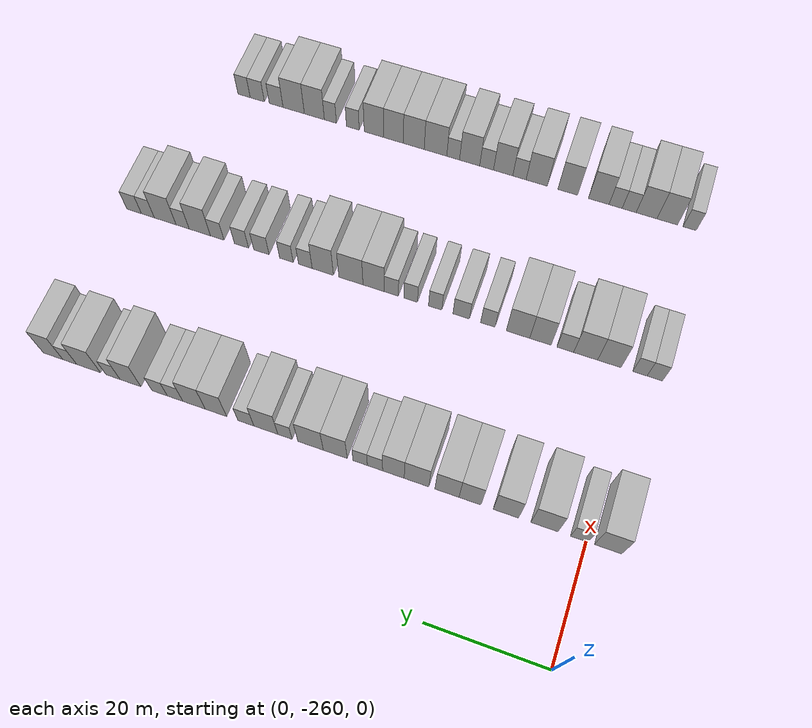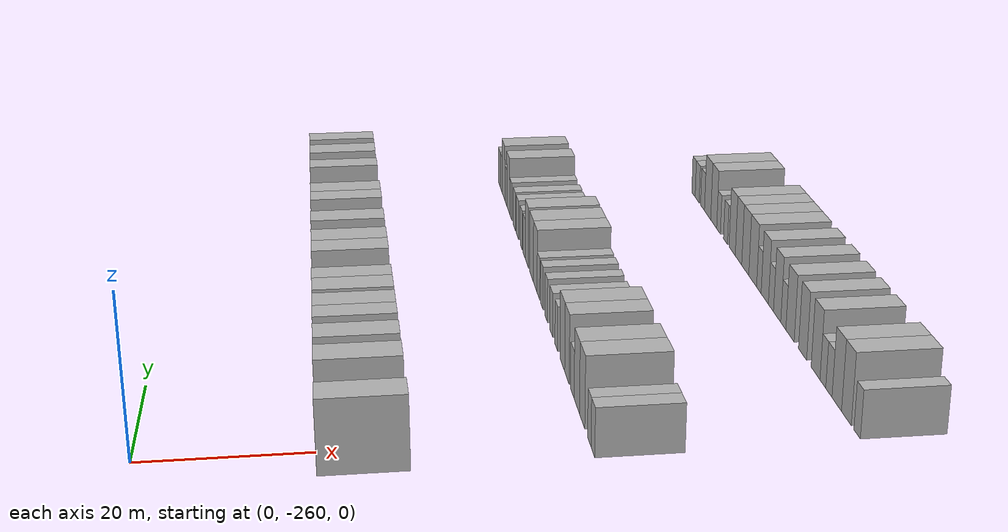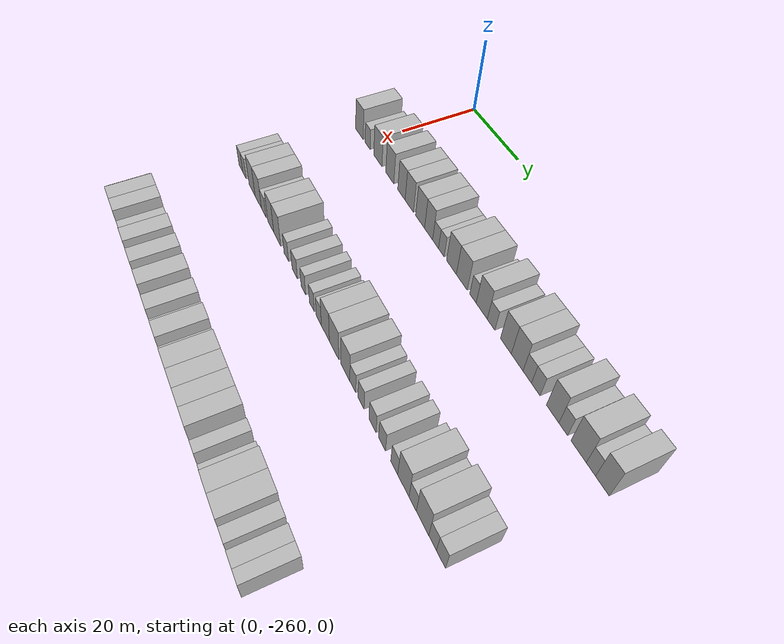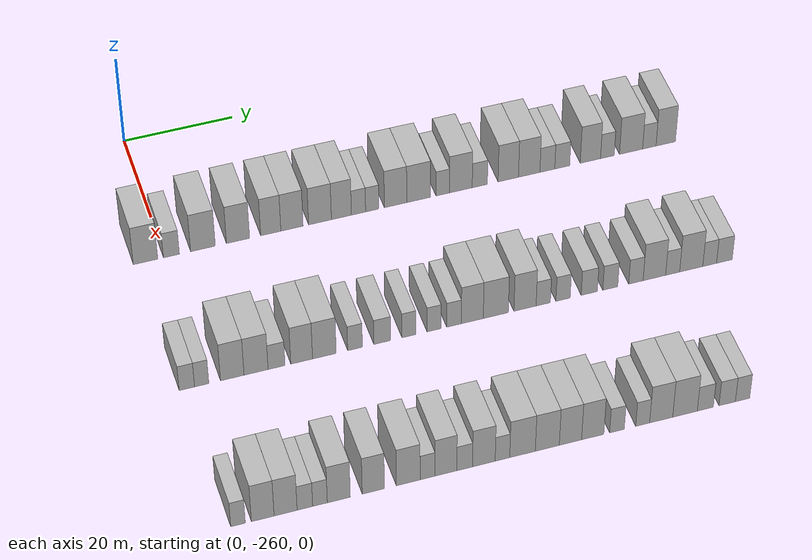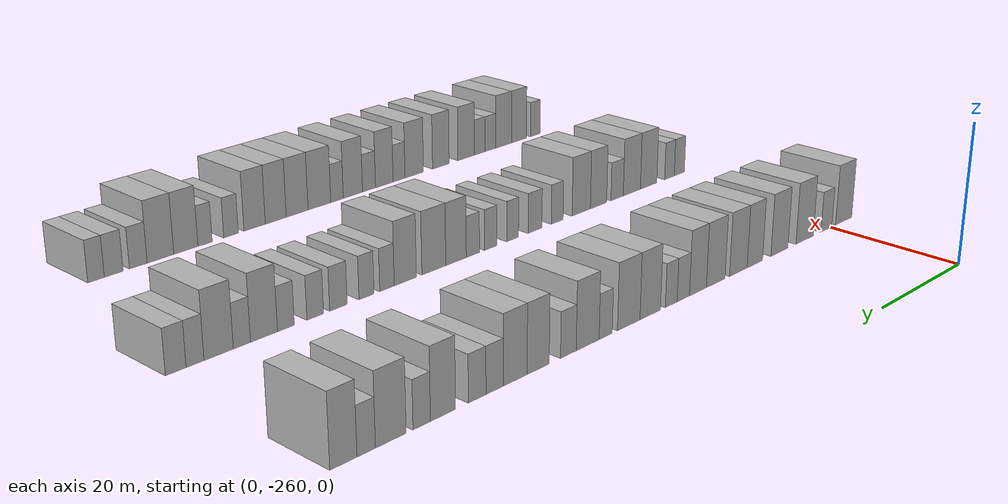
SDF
<sdf version="1.6">
 <world name="default">
  <model name="building_48">
   <static>1</static>
   <pose>25.0000 -263.4462 0 0.000000 0.000000 0.000000</pose>
   <link name="link">
    <pose>0 0 4.50 0 0 0</pose>
    <collision name="collision"><geometry><box><size>10.0000 4.3500 9.0000</size></box></geometry></collision>
    <visual name="visual">
     <cast_shadows>0</cast_shadows>
     <geometry><box><size>10.0000 4.3500 9.0000</size></box></geometry>
     <material>
      <script>
       <uri>model://HANNAS_wall/materials/scripts</uri>
       <uri>model://HANNAS_wall/materials/textures</uri>
       <name>vrc/HANNAS_wall</name>
      </script>
     </material>
    </visual>
   </link>
  </model>
  <model name="building_49">
   <static>1</static>
   <pose>25.0000 -258.8504 0 0.000000 0.000000 0.000000</pose>
   <link name="link">
    <pose>0 0 3.00 0 0 0</pose>
    <collision name="collision"><geometry><box><size>10.0000 2.8417 6.0000</size></box></geometry></collision>
    <visual name="visual">
     <cast_shadows>0</cast_shadows>
     <geometry><box><size>10.0000 2.8417 6.0000</size></box></geometry>
     <material>
      <script>
       <uri>model://HANNAS_wall/materials/scripts</uri>
       <uri>model://HANNAS_wall/materials/textures</uri>
       <name>vrc/HANNAS_wall</name>
      </script>
     </material>
    </visual>
   </link>
  </model>
  <model name="building_50">
   <static>1</static>
   <pose>25.0000 -253.2241 0 0.000000 0.000000 0.000000</pose>
   <link name="link">
    <pose>0 0 4.50 0 0 0</pose>
    <collision name="collision"><geometry><box><size>10.0000 4.4109 9.0000</size></box></geometry></collision>
    <visual name="visual">
     <cast_shadows>0</cast_shadows>
     <geometry><box><size>10.0000 4.4109 9.0000</size></box></geometry>
     <material>
      <script>
       <uri>model://HANNAS_wall/materials/scripts</uri>
       <uri>model://HANNAS_wall/materials/textures</uri>
       <name>vrc/HANNAS_wall</name>
      </script>
     </material>
    </visual>
   </link>
  </model>
  <model name="building_51">
   <static>1</static>
   <pose>25.0000 -246.9403 0 0.000000 0.000000 0.000000</pose>
   <link name="link">
    <pose>0 0 4.50 0 0 0</pose>
    <collision name="collision"><geometry><box><size>10.0000 4.1566 9.0000</size></box></geometry></collision>
    <visual name="visual">
     <cast_shadows>0</cast_shadows>
     <geometry><box><size>10.0000 4.1566 9.0000</size></box></geometry>
     <material>
      <script>
       <uri>model://HANNAS_wall/materials/scripts</uri>
       <uri>model://HANNAS_wall/materials/textures</uri>
       <name>vrc/HANNAS_wall</name>
      </script>
     </material>
    </visual>
   </link>
  </model>
  <model name="building_52">
   <static>1</static>
   <pose>25.0000 -241.0428 0 0.000000 0.000000 0.000000</pose>
   <link name="link">
    <pose>0 0 4.50 0 0 0</pose>
    <collision name="collision"><geometry><box><size>10.0000 3.6384 9.0000</size></box></geometry></collision>
    <visual name="visual">
     <cast_shadows>0</cast_shadows>
     <geometry><box><size>10.0000 3.6384 9.0000</size></box></geometry>
     <material>
      <script>
       <uri>model://HANNAS_wall/materials/scripts</uri>
       <uri>model://HANNAS_wall/materials/textures</uri>
       <name>vrc/HANNAS_wall</name>
      </script>
     </material>
    </visual>
   </link>
  </model>
  <model name="building_53">
   <static>1</static>
   <pose>25.0000 -237.2088 0 0.000000 0.000000 0.000000</pose>
   <link name="link">
    <pose>0 0 4.50 0 0 0</pose>
    <collision name="collision"><geometry><box><size>10.0000 4.0295 9.0000</size></box></geometry></collision>
    <visual name="visual">
     <cast_shadows>0</cast_shadows>
     <geometry><box><size>10.0000 4.0295 9.0000</size></box></geometry>
     <material>
      <script>
       <uri>model://HANNAS_wall/materials/scripts</uri>
       <uri>model://HANNAS_wall/materials/textures</uri>
       <name>vrc/HANNAS_wall</name>
      </script>
     </material>
    </visual>
   </link>
  </model>
  <model name="building_54">
   <static>1</static>
   <pose>25.0000 -232.1195 0 0.000000 0.000000 0.000000</pose>
   <link name="link">
    <pose>0 0 4.50 0 0 0</pose>
    <collision name="collision"><geometry><box><size>10.0000 4.1490 9.0000</size></box></geometry></collision>
    <visual name="visual">
     <cast_shadows>0</cast_shadows>
     <geometry><box><size>10.0000 4.1490 9.0000</size></box></geometry>
     <material>
      <script>
       <uri>model://HANNAS_wall/materials/scripts</uri>
       <uri>model://HANNAS_wall/materials/textures</uri>
       <name>vrc/HANNAS_wall</name>
      </script>
     </material>
    </visual>
   </link>
  </model>
  <model name="building_55">
   <static>1</static>
   <pose>25.0000 -228.2227 0 0.000000 0.000000 0.000000</pose>
   <link name="link">
    <pose>0 0 4.50 0 0 0</pose>
    <collision name="collision"><geometry><box><size>10.0000 3.6446 9.0000</size></box></geometry></collision>
    <visual name="visual">
     <cast_shadows>0</cast_shadows>
     <geometry><box><size>10.0000 3.6446 9.0000</size></box></geometry>
     <material>
      <script>
       <uri>model://HANNAS_wall/materials/scripts</uri>
       <uri>model://HANNAS_wall/materials/textures</uri>
       <name>vrc/HANNAS_wall</name>
      </script>
     </material>
    </visual>
   </link>
  </model>
  <model name="building_56">
   <static>1</static>
   <pose>25.0000 -225.1017 0 0.000000 0.000000 0.000000</pose>
   <link name="link">
    <pose>0 0 3.00 0 0 0</pose>
    <collision name="collision"><geometry><box><size>10.0000 2.5976 6.0000</size></box></geometry></collision>
    <visual name="visual">
     <cast_shadows>0</cast_shadows>
     <geometry><box><size>10.0000 2.5976 6.0000</size></box></geometry>
     <material>
      <script>
       <uri>model://HANNAS_wall/materials/scripts</uri>
       <uri>model://HANNAS_wall/materials/textures</uri>
       <name>vrc/HANNAS_wall</name>
      </script>
     </material>
    </visual>
   </link>
  </model>
  <model name="building_57">
   <static>1</static>
   <pose>25.0000 -222.5824 0 0.000000 0.000000 0.000000</pose>
   <link name="link">
    <pose>0 0 3.00 0 0 0</pose>
    <collision name="collision"><geometry><box><size>10.0000 2.4409 6.0000</size></box></geometry></collision>
    <visual name="visual">
     <cast_shadows>0</cast_shadows>
     <geometry><box><size>10.0000 2.4409 6.0000</size></box></geometry>
     <material>
      <script>
       <uri>model://HANNAS_wall/materials/scripts</uri>
       <uri>model://HANNAS_wall/materials/textures</uri>
       <name>vrc/HANNAS_wall</name>
      </script>
     </material>
    </visual>
   </link>
  </model>
  <model name="building_58">
   <static>1</static>
   <pose>25.0000 -218.3059 0 0.000000 0.000000 0.000000</pose>
   <link name="link">
    <pose>0 0 4.50 0 0 0</pose>
    <collision name="collision"><geometry><box><size>10.0000 4.1121 9.0000</size></box></geometry></collision>
    <visual name="visual">
     <cast_shadows>0</cast_shadows>
     <geometry><box><size>10.0000 4.1121 9.0000</size></box></geometry>
     <material>
      <script>
       <uri>model://HANNAS_wall/materials/scripts</uri>
       <uri>model://HANNAS_wall/materials/textures</uri>
       <name>vrc/HANNAS_wall</name>
      </script>
     </material>
    </visual>
   </link>
  </model>
  <model name="building_59">
   <static>1</static>
   <pose>25.0000 -214.0481 0 0.000000 0.000000 0.000000</pose>
   <link name="link">
    <pose>0 0 4.50 0 0 0</pose>
    <collision name="collision"><geometry><box><size>10.0000 4.4035 9.0000</size></box></geometry></collision>
    <visual name="visual">
     <cast_shadows>0</cast_shadows>
     <geometry><box><size>10.0000 4.4035 9.0000</size></box></geometry>
     <material>
      <script>
       <uri>model://HANNAS_wall/materials/scripts</uri>
       <uri>model://HANNAS_wall/materials/textures</uri>
       <name>vrc/HANNAS_wall</name>
      </script>
     </material>
    </visual>
   </link>
  </model>
  <model name="building_60">
   <static>1</static>
   <pose>25.0000 -209.5985 0 0.000000 0.000000 0.000000</pose>
   <link name="link">
    <pose>0 0 3.00 0 0 0</pose>
    <collision name="collision"><geometry><box><size>10.0000 2.4957 6.0000</size></box></geometry></collision>
    <visual name="visual">
     <cast_shadows>0</cast_shadows>
     <geometry><box><size>10.0000 2.4957 6.0000</size></box></geometry>
     <material>
      <script>
       <uri>model://HANNAS_wall/materials/scripts</uri>
       <uri>model://HANNAS_wall/materials/textures</uri>
       <name>vrc/HANNAS_wall</name>
      </script>
     </material>
    </visual>
   </link>
  </model>
  <model name="building_61">
   <static>1</static>
   <pose>25.0000 -206.2425 0 0.000000 0.000000 0.000000</pose>
   <link name="link">
    <pose>0 0 4.50 0 0 0</pose>
    <collision name="collision"><geometry><box><size>10.0000 4.2162 9.0000</size></box></geometry></collision>
    <visual name="visual">
     <cast_shadows>0</cast_shadows>
     <geometry><box><size>10.0000 4.2162 9.0000</size></box></geometry>
     <material>
      <script>
       <uri>model://HANNAS_wall/materials/scripts</uri>
       <uri>model://HANNAS_wall/materials/textures</uri>
       <name>vrc/HANNAS_wall</name>
      </script>
     </material>
    </visual>
   </link>
  </model>
  <model name="building_62">
   <static>1</static>
   <pose>25.0000 -202.7223 0 0.000000 0.000000 0.000000</pose>
   <link name="link">
    <pose>0 0 3.00 0 0 0</pose>
    <collision name="collision"><geometry><box><size>10.0000 2.8242 6.0000</size></box></geometry></collision>
    <visual name="visual">
     <cast_shadows>0</cast_shadows>
     <geometry><box><size>10.0000 2.8242 6.0000</size></box></geometry>
     <material>
      <script>
       <uri>model://HANNAS_wall/materials/scripts</uri>
       <uri>model://HANNAS_wall/materials/textures</uri>
       <name>vrc/HANNAS_wall</name>
      </script>
     </material>
    </visual>
   </link>
  </model>
  <model name="building_63">
   <static>1</static>
   <pose>25.0000 -197.4061 0 0.000000 0.000000 0.000000</pose>
   <link name="link">
    <pose>0 0 4.50 0 0 0</pose>
    <collision name="collision"><geometry><box><size>10.0000 3.8082 9.0000</size></box></geometry></collision>
    <visual name="visual">
     <cast_shadows>0</cast_shadows>
     <geometry><box><size>10.0000 3.8082 9.0000</size></box></geometry>
     <material>
      <script>
       <uri>model://HANNAS_wall/materials/scripts</uri>
       <uri>model://HANNAS_wall/materials/textures</uri>
       <name>vrc/HANNAS_wall</name>
      </script>
     </material>
    </visual>
   </link>
  </model>
  <model name="building_64">
   <static>1</static>
   <pose>25.0000 -193.4895 0 0.000000 0.000000 0.000000</pose>
   <link name="link">
    <pose>0 0 4.50 0 0 0</pose>
    <collision name="collision"><geometry><box><size>10.0000 4.0249 9.0000</size></box></geometry></collision>
    <visual name="visual">
     <cast_shadows>0</cast_shadows>
     <geometry><box><size>10.0000 4.0249 9.0000</size></box></geometry>
     <material>
      <script>
       <uri>model://HANNAS_wall/materials/scripts</uri>
       <uri>model://HANNAS_wall/materials/textures</uri>
       <name>vrc/HANNAS_wall</name>
      </script>
     </material>
    </visual>
   </link>
  </model>
  <model name="building_65">
   <static>1</static>
   <pose>25.0000 -190.0771 0 0.000000 0.000000 0.000000</pose>
   <link name="link">
    <pose>0 0 3.00 0 0 0</pose>
    <collision name="collision"><geometry><box><size>10.0000 2.8000 6.0000</size></box></geometry></collision>
    <visual name="visual">
     <cast_shadows>0</cast_shadows>
     <geometry><box><size>10.0000 2.8000 6.0000</size></box></geometry>
     <material>
      <script>
       <uri>model://HANNAS_wall/materials/scripts</uri>
       <uri>model://HANNAS_wall/materials/textures</uri>
       <name>vrc/HANNAS_wall</name>
      </script>
     </material>
    </visual>
   </link>
  </model>
  <model name="building_66">
   <static>1</static>
   <pose>25.0000 -187.2723 0 0.000000 0.000000 0.000000</pose>
   <link name="link">
    <pose>0 0 3.00 0 0 0</pose>
    <collision name="collision"><geometry><box><size>10.0000 2.8094 6.0000</size></box></geometry></collision>
    <visual name="visual">
     <cast_shadows>0</cast_shadows>
     <geometry><box><size>10.0000 2.8094 6.0000</size></box></geometry>
     <material>
      <script>
       <uri>model://HANNAS_wall/materials/scripts</uri>
       <uri>model://HANNAS_wall/materials/textures</uri>
       <name>vrc/HANNAS_wall</name>
      </script>
     </material>
    </visual>
   </link>
  </model>
  <model name="building_67">
   <static>1</static>
   <pose>25.0000 -181.9507 0 0.000000 0.000000 0.000000</pose>
   <link name="link">
    <pose>0 0 4.50 0 0 0</pose>
    <collision name="collision"><geometry><box><size>10.0000 3.8338 9.0000</size></box></geometry></collision>
    <visual name="visual">
     <cast_shadows>0</cast_shadows>
     <geometry><box><size>10.0000 3.8338 9.0000</size></box></geometry>
     <material>
      <script>
       <uri>model://HANNAS_wall/materials/scripts</uri>
       <uri>model://HANNAS_wall/materials/textures</uri>
       <name>vrc/HANNAS_wall</name>
      </script>
     </material>
    </visual>
   </link>
  </model>
  <model name="building_68">
   <static>1</static>
   <pose>25.0000 -178.7306 0 0.000000 0.000000 0.000000</pose>
   <link name="link">
    <pose>0 0 3.00 0 0 0</pose>
    <collision name="collision"><geometry><box><size>10.0000 2.6065 6.0000</size></box></geometry></collision>
    <visual name="visual">
     <cast_shadows>0</cast_shadows>
     <geometry><box><size>10.0000 2.6065 6.0000</size></box></geometry>
     <material>
      <script>
       <uri>model://HANNAS_wall/materials/scripts</uri>
       <uri>model://HANNAS_wall/materials/textures</uri>
       <name>vrc/HANNAS_wall</name>
      </script>
     </material>
    </visual>
   </link>
  </model>
  <model name="building_69">
   <static>1</static>
   <pose>25.0000 -174.2246 0 0.000000 0.000000 0.000000</pose>
   <link name="link">
    <pose>0 0 4.50 0 0 0</pose>
    <collision name="collision"><geometry><box><size>10.0000 4.4054 9.0000</size></box></geometry></collision>
    <visual name="visual">
     <cast_shadows>0</cast_shadows>
     <geometry><box><size>10.0000 4.4054 9.0000</size></box></geometry>
     <material>
      <script>
       <uri>model://HANNAS_wall/materials/scripts</uri>
       <uri>model://HANNAS_wall/materials/textures</uri>
       <name>vrc/HANNAS_wall</name>
      </script>
     </material>
    </visual>
   </link>
  </model>
  <model name="building_70">
   <static>1</static>
   <pose>25.0000 -170.7380 0 0.000000 0.000000 0.000000</pose>
   <link name="link">
    <pose>0 0 3.00 0 0 0</pose>
    <collision name="collision"><geometry><box><size>10.0000 2.5677 6.0000</size></box></geometry></collision>
    <visual name="visual">
     <cast_shadows>0</cast_shadows>
     <geometry><box><size>10.0000 2.5677 6.0000</size></box></geometry>
     <material>
      <script>
       <uri>model://HANNAS_wall/materials/scripts</uri>
       <uri>model://HANNAS_wall/materials/textures</uri>
       <name>vrc/HANNAS_wall</name>
      </script>
     </material>
    </visual>
   </link>
  </model>
  <model name="building_71">
   <static>1</static>
   <pose>25.0000 -167.6021 0 0.000000 0.000000 0.000000</pose>
   <link name="link">
    <pose>0 0 4.50 0 0 0</pose>
    <collision name="collision"><geometry><box><size>10.0000 3.7041 9.0000</size></box></geometry></collision>
    <visual name="visual">
     <cast_shadows>0</cast_shadows>
     <geometry><box><size>10.0000 3.7041 9.0000</size></box></geometry>
     <material>
      <script>
       <uri>model://HANNAS_wall/materials/scripts</uri>
       <uri>model://HANNAS_wall/materials/textures</uri>
       <name>vrc/HANNAS_wall</name>
      </script>
     </material>
    </visual>
   </link>
  </model>
  <model name="building_277">
   <static>1</static>
   <pose>55.0000 -263.7579 0 0.000000 0.000000 0.000000</pose>
   <link name="link">
    <pose>0 0 3.00 0 0 0</pose>
    <collision name="collision"><geometry><box><size>10.0000 2.6251 6.0000</size></box></geometry></collision>
    <visual name="visual">
     <cast_shadows>0</cast_shadows>
     <geometry><box><size>10.0000 2.6251 6.0000</size></box></geometry>
     <material>
      <script>
       <uri>model://HANNAS_wall/materials/scripts</uri>
       <uri>model://HANNAS_wall/materials/textures</uri>
       <name>vrc/HANNAS_wall</name>
      </script>
     </material>
    </visual>
   </link>
  </model>
  <model name="building_278">
   <static>1</static>
   <pose>55.0000 -261.2217 0 0.000000 0.000000 0.000000</pose>
   <link name="link">
    <pose>0 0 3.00 0 0 0</pose>
    <collision name="collision"><geometry><box><size>10.0000 2.4473 6.0000</size></box></geometry></collision>
    <visual name="visual">
     <cast_shadows>0</cast_shadows>
     <geometry><box><size>10.0000 2.4473 6.0000</size></box></geometry>
     <material>
      <script>
       <uri>model://HANNAS_wall/materials/scripts</uri>
       <uri>model://HANNAS_wall/materials/textures</uri>
       <name>vrc/HANNAS_wall</name>
      </script>
     </material>
    </visual>
   </link>
  </model>
  <model name="building_279">
   <static>1</static>
   <pose>55.0000 -255.9738 0 0.000000 0.000000 0.000000</pose>
   <link name="link">
    <pose>0 0 4.50 0 0 0</pose>
    <collision name="collision"><geometry><box><size>10.0000 4.0484 9.0000</size></box></geometry></collision>
    <visual name="visual">
     <cast_shadows>0</cast_shadows>
     <geometry><box><size>10.0000 4.0484 9.0000</size></box></geometry>
     <material>
      <script>
       <uri>model://HANNAS_wall/materials/scripts</uri>
       <uri>model://HANNAS_wall/materials/textures</uri>
       <name>vrc/HANNAS_wall</name>
      </script>
     </material>
    </visual>
   </link>
  </model>
  <model name="building_280">
   <static>1</static>
   <pose>55.0000 -251.8753 0 0.000000 0.000000 0.000000</pose>
   <link name="link">
    <pose>0 0 4.50 0 0 0</pose>
    <collision name="collision"><geometry><box><size>10.0000 4.1486 9.0000</size></box></geometry></collision>
    <visual name="visual">
     <cast_shadows>0</cast_shadows>
     <geometry><box><size>10.0000 4.1486 9.0000</size></box></geometry>
     <material>
      <script>
       <uri>model://HANNAS_wall/materials/scripts</uri>
       <uri>model://HANNAS_wall/materials/textures</uri>
       <name>vrc/HANNAS_wall</name>
      </script>
     </material>
    </visual>
   </link>
  </model>
  <model name="building_281">
   <static>1</static>
   <pose>55.0000 -248.3374 0 0.000000 0.000000 0.000000</pose>
   <link name="link">
    <pose>0 0 3.00 0 0 0</pose>
    <collision name="collision"><geometry><box><size>10.0000 2.9271 6.0000</size></box></geometry></collision>
    <visual name="visual">
     <cast_shadows>0</cast_shadows>
     <geometry><box><size>10.0000 2.9271 6.0000</size></box></geometry>
     <material>
      <script>
       <uri>model://HANNAS_wall/materials/scripts</uri>
       <uri>model://HANNAS_wall/materials/textures</uri>
       <name>vrc/HANNAS_wall</name>
      </script>
     </material>
    </visual>
   </link>
  </model>
  <model name="building_282">
   <static>1</static>
   <pose>55.0000 -243.9858 0 0.000000 0.000000 0.000000</pose>
   <link name="link">
    <pose>0 0 4.50 0 0 0</pose>
    <collision name="collision"><geometry><box><size>10.0000 3.7761 9.0000</size></box></geometry></collision>
    <visual name="visual">
     <cast_shadows>0</cast_shadows>
     <geometry><box><size>10.0000 3.7761 9.0000</size></box></geometry>
     <material>
      <script>
       <uri>model://HANNAS_wall/materials/scripts</uri>
       <uri>model://HANNAS_wall/materials/textures</uri>
       <name>vrc/HANNAS_wall</name>
      </script>
     </material>
    </visual>
   </link>
  </model>
  <model name="building_283">
   <static>1</static>
   <pose>55.0000 -240.0343 0 0.000000 0.000000 0.000000</pose>
   <link name="link">
    <pose>0 0 4.50 0 0 0</pose>
    <collision name="collision"><geometry><box><size>10.0000 4.1269 9.0000</size></box></geometry></collision>
    <visual name="visual">
     <cast_shadows>0</cast_shadows>
     <geometry><box><size>10.0000 4.1269 9.0000</size></box></geometry>
     <material>
      <script>
       <uri>model://HANNAS_wall/materials/scripts</uri>
       <uri>model://HANNAS_wall/materials/textures</uri>
       <name>vrc/HANNAS_wall</name>
      </script>
     </material>
    </visual>
   </link>
  </model>
  <model name="building_284">
   <static>1</static>
   <pose>55.0000 -234.6807 0 0.000000 0.000000 0.000000</pose>
   <link name="link">
    <pose>0 0 3.00 0 0 0</pose>
    <collision name="collision"><geometry><box><size>10.0000 2.5805 6.0000</size></box></geometry></collision>
    <visual name="visual">
     <cast_shadows>0</cast_shadows>
     <geometry><box><size>10.0000 2.5805 6.0000</size></box></geometry>
     <material>
      <script>
       <uri>model://HANNAS_wall/materials/scripts</uri>
       <uri>model://HANNAS_wall/materials/textures</uri>
       <name>vrc/HANNAS_wall</name>
      </script>
     </material>
    </visual>
   </link>
  </model>
  <model name="building_285">
   <static>1</static>
   <pose>55.0000 -229.9127 0 0.000000 0.000000 0.000000</pose>
   <link name="link">
    <pose>0 0 3.00 0 0 0</pose>
    <collision name="collision"><geometry><box><size>10.0000 2.9554 6.0000</size></box></geometry></collision>
    <visual name="visual">
     <cast_shadows>0</cast_shadows>
     <geometry><box><size>10.0000 2.9554 6.0000</size></box></geometry>
     <material>
      <script>
       <uri>model://HANNAS_wall/materials/scripts</uri>
       <uri>model://HANNAS_wall/materials/textures</uri>
       <name>vrc/HANNAS_wall</name>
      </script>
     </material>
    </visual>
   </link>
  </model>
  <model name="building_286">
   <static>1</static>
   <pose>55.0000 -225.2228 0 0.000000 0.000000 0.000000</pose>
   <link name="link">
    <pose>0 0 3.00 0 0 0</pose>
    <collision name="collision"><geometry><box><size>10.0000 2.4244 6.0000</size></box></geometry></collision>
    <visual name="visual">
     <cast_shadows>0</cast_shadows>
     <geometry><box><size>10.0000 2.4244 6.0000</size></box></geometry>
     <material>
      <script>
       <uri>model://HANNAS_wall/materials/scripts</uri>
       <uri>model://HANNAS_wall/materials/textures</uri>
       <name>vrc/HANNAS_wall</name>
      </script>
     </material>
    </visual>
   </link>
  </model>
  <model name="building_287">
   <static>1</static>
   <pose>55.0000 -220.7665 0 0.000000 0.000000 0.000000</pose>
   <link name="link">
    <pose>0 0 3.00 0 0 0</pose>
    <collision name="collision"><geometry><box><size>10.0000 2.4882 6.0000</size></box></geometry></collision>
    <visual name="visual">
     <cast_shadows>0</cast_shadows>
     <geometry><box><size>10.0000 2.4882 6.0000</size></box></geometry>
     <material>
      <script>
       <uri>model://HANNAS_wall/materials/scripts</uri>
       <uri>model://HANNAS_wall/materials/textures</uri>
       <name>vrc/HANNAS_wall</name>
      </script>
     </material>
    </visual>
   </link>
  </model>
  <model name="building_288">
   <static>1</static>
   <pose>55.0000 -217.2340 0 0.000000 0.000000 0.000000</pose>
   <link name="link">
    <pose>0 0 3.00 0 0 0</pose>
    <collision name="collision"><geometry><box><size>10.0000 2.5768 6.0000</size></box></geometry></collision>
    <visual name="visual">
     <cast_shadows>0</cast_shadows>
     <geometry><box><size>10.0000 2.5768 6.0000</size></box></geometry>
     <material>
      <script>
       <uri>model://HANNAS_wall/materials/scripts</uri>
       <uri>model://HANNAS_wall/materials/textures</uri>
       <name>vrc/HANNAS_wall</name>
      </script>
     </material>
    </visual>
   </link>
  </model>
  <model name="building_289">
   <static>1</static>
   <pose>55.0000 -213.9810 0 0.000000 0.000000 0.000000</pose>
   <link name="link">
    <pose>0 0 4.50 0 0 0</pose>
    <collision name="collision"><geometry><box><size>10.0000 3.9292 9.0000</size></box></geometry></collision>
    <visual name="visual">
     <cast_shadows>0</cast_shadows>
     <geometry><box><size>10.0000 3.9292 9.0000</size></box></geometry>
     <material>
      <script>
       <uri>model://HANNAS_wall/materials/scripts</uri>
       <uri>model://HANNAS_wall/materials/textures</uri>
       <name>vrc/HANNAS_wall</name>
      </script>
     </material>
    </visual>
   </link>
  </model>
  <model name="building_290">
   <static>1</static>
   <pose>55.0000 -209.7790 0 0.000000 0.000000 0.000000</pose>
   <link name="link">
    <pose>0 0 4.50 0 0 0</pose>
    <collision name="collision"><geometry><box><size>10.0000 4.4749 9.0000</size></box></geometry></collision>
    <visual name="visual">
     <cast_shadows>0</cast_shadows>
     <geometry><box><size>10.0000 4.4749 9.0000</size></box></geometry>
     <material>
      <script>
       <uri>model://HANNAS_wall/materials/scripts</uri>
       <uri>model://HANNAS_wall/materials/textures</uri>
       <name>vrc/HANNAS_wall</name>
      </script>
     </material>
    </visual>
   </link>
  </model>
  <model name="building_291">
   <static>1</static>
   <pose>55.0000 -204.5471 0 0.000000 0.000000 0.000000</pose>
   <link name="link">
    <pose>0 0 4.50 0 0 0</pose>
    <collision name="collision"><geometry><box><size>10.0000 3.9888 9.0000</size></box></geometry></collision>
    <visual name="visual">
     <cast_shadows>0</cast_shadows>
     <geometry><box><size>10.0000 3.9888 9.0000</size></box></geometry>
     <material>
      <script>
       <uri>model://HANNAS_wall/materials/scripts</uri>
       <uri>model://HANNAS_wall/materials/textures</uri>
       <name>vrc/HANNAS_wall</name>
      </script>
     </material>
    </visual>
   </link>
  </model>
  <model name="building_292">
   <static>1</static>
   <pose>55.0000 -201.2716 0 0.000000 0.000000 0.000000</pose>
   <link name="link">
    <pose>0 0 3.00 0 0 0</pose>
    <collision name="collision"><geometry><box><size>10.0000 2.5624 6.0000</size></box></geometry></collision>
    <visual name="visual">
     <cast_shadows>0</cast_shadows>
     <geometry><box><size>10.0000 2.5624 6.0000</size></box></geometry>
     <material>
      <script>
       <uri>model://HANNAS_wall/materials/scripts</uri>
       <uri>model://HANNAS_wall/materials/textures</uri>
       <name>vrc/HANNAS_wall</name>
      </script>
     </material>
    </visual>
   </link>
  </model>
  <model name="building_293">
   <static>1</static>
   <pose>55.0000 -197.7019 0 0.000000 0.000000 0.000000</pose>
   <link name="link">
    <pose>0 0 3.00 0 0 0</pose>
    <collision name="collision"><geometry><box><size>10.0000 2.5770 6.0000</size></box></geometry></collision>
    <visual name="visual">
     <cast_shadows>0</cast_shadows>
     <geometry><box><size>10.0000 2.5770 6.0000</size></box></geometry>
     <material>
      <script>
       <uri>model://HANNAS_wall/materials/scripts</uri>
       <uri>model://HANNAS_wall/materials/textures</uri>
       <name>vrc/HANNAS_wall</name>
      </script>
     </material>
    </visual>
   </link>
  </model>
  <model name="building_294">
   <static>1</static>
   <pose>55.0000 -192.9529 0 0.000000 0.000000 0.000000</pose>
   <link name="link">
    <pose>0 0 3.00 0 0 0</pose>
    <collision name="collision"><geometry><box><size>10.0000 2.9210 6.0000</size></box></geometry></collision>
    <visual name="visual">
     <cast_shadows>0</cast_shadows>
     <geometry><box><size>10.0000 2.9210 6.0000</size></box></geometry>
     <material>
      <script>
       <uri>model://HANNAS_wall/materials/scripts</uri>
       <uri>model://HANNAS_wall/materials/textures</uri>
       <name>vrc/HANNAS_wall</name>
      </script>
     </material>
    </visual>
   </link>
  </model>
  <model name="building_295">
   <static>1</static>
   <pose>55.0000 -189.1364 0 0.000000 0.000000 0.000000</pose>
   <link name="link">
    <pose>0 0 3.00 0 0 0</pose>
    <collision name="collision"><geometry><box><size>10.0000 2.7121 6.0000</size></box></geometry></collision>
    <visual name="visual">
     <cast_shadows>0</cast_shadows>
     <geometry><box><size>10.0000 2.7121 6.0000</size></box></geometry>
     <material>
      <script>
       <uri>model://HANNAS_wall/materials/scripts</uri>
       <uri>model://HANNAS_wall/materials/textures</uri>
       <name>vrc/HANNAS_wall</name>
      </script>
     </material>
    </visual>
   </link>
  </model>
  <model name="building_296">
   <static>1</static>
   <pose>55.0000 -184.4655 0 0.000000 0.000000 0.000000</pose>
   <link name="link">
    <pose>0 0 3.00 0 0 0</pose>
    <collision name="collision"><geometry><box><size>10.0000 2.6298 6.0000</size></box></geometry></collision>
    <visual name="visual">
     <cast_shadows>0</cast_shadows>
     <geometry><box><size>10.0000 2.6298 6.0000</size></box></geometry>
     <material>
      <script>
       <uri>model://HANNAS_wall/materials/scripts</uri>
       <uri>model://HANNAS_wall/materials/textures</uri>
       <name>vrc/HANNAS_wall</name>
      </script>
     </material>
    </visual>
   </link>
  </model>
  <model name="building_297">
   <static>1</static>
   <pose>55.0000 -181.0860 0 0.000000 0.000000 0.000000</pose>
   <link name="link">
    <pose>0 0 4.50 0 0 0</pose>
    <collision name="collision"><geometry><box><size>10.0000 4.1291 9.0000</size></box></geometry></collision>
    <visual name="visual">
     <cast_shadows>0</cast_shadows>
     <geometry><box><size>10.0000 4.1291 9.0000</size></box></geometry>
     <material>
      <script>
       <uri>model://HANNAS_wall/materials/scripts</uri>
       <uri>model://HANNAS_wall/materials/textures</uri>
       <name>vrc/HANNAS_wall</name>
      </script>
     </material>
    </visual>
   </link>
  </model>
  <model name="building_298">
   <static>1</static>
   <pose>55.0000 -177.7352 0 0.000000 0.000000 0.000000</pose>
   <link name="link">
    <pose>0 0 3.00 0 0 0</pose>
    <collision name="collision"><geometry><box><size>10.0000 2.5724 6.0000</size></box></geometry></collision>
    <visual name="visual">
     <cast_shadows>0</cast_shadows>
     <geometry><box><size>10.0000 2.5724 6.0000</size></box></geometry>
     <material>
      <script>
       <uri>model://HANNAS_wall/materials/scripts</uri>
       <uri>model://HANNAS_wall/materials/textures</uri>
       <name>vrc/HANNAS_wall</name>
      </script>
     </material>
    </visual>
   </link>
  </model>
  <model name="building_299">
   <static>1</static>
   <pose>55.0000 -174.3183 0 0.000000 0.000000 0.000000</pose>
   <link name="link">
    <pose>0 0 4.50 0 0 0</pose>
    <collision name="collision"><geometry><box><size>10.0000 4.2614 9.0000</size></box></geometry></collision>
    <visual name="visual">
     <cast_shadows>0</cast_shadows>
     <geometry><box><size>10.0000 4.2614 9.0000</size></box></geometry>
     <material>
      <script>
       <uri>model://HANNAS_wall/materials/scripts</uri>
       <uri>model://HANNAS_wall/materials/textures</uri>
       <name>vrc/HANNAS_wall</name>
      </script>
     </material>
    </visual>
   </link>
  </model>
  <model name="building_300">
   <static>1</static>
   <pose>55.0000 -170.9168 0 0.000000 0.000000 0.000000</pose>
   <link name="link">
    <pose>0 0 3.00 0 0 0</pose>
    <collision name="collision"><geometry><box><size>10.0000 2.5416 6.0000</size></box></geometry></collision>
    <visual name="visual">
     <cast_shadows>0</cast_shadows>
     <geometry><box><size>10.0000 2.5416 6.0000</size></box></geometry>
     <material>
      <script>
       <uri>model://HANNAS_wall/materials/scripts</uri>
       <uri>model://HANNAS_wall/materials/textures</uri>
       <name>vrc/HANNAS_wall</name>
      </script>
     </material>
    </visual>
   </link>
  </model>
  <model name="building_301">
   <static>1</static>
   <pose>55.0000 -168.2009 0 0.000000 0.000000 0.000000</pose>
   <link name="link">
    <pose>0 0 3.00 0 0 0</pose>
    <collision name="collision"><geometry><box><size>10.0000 2.8902 6.0000</size></box></geometry></collision>
    <visual name="visual">
     <cast_shadows>0</cast_shadows>
     <geometry><box><size>10.0000 2.8902 6.0000</size></box></geometry>
     <material>
      <script>
       <uri>model://HANNAS_wall/materials/scripts</uri>
       <uri>model://HANNAS_wall/materials/textures</uri>
       <name>vrc/HANNAS_wall</name>
      </script>
     </material>
    </visual>
   </link>
  </model>
  <model name="building_503">
   <static>1</static>
   <pose>85.0000 -263.0343 0 0.000000 0.000000 0.000000</pose>
   <link name="link">
    <pose>0 0 3.00 0 0 0</pose>
    <collision name="collision"><geometry><box><size>10.0000 2.4024 6.0000</size></box></geometry></collision>
    <visual name="visual">
     <cast_shadows>0</cast_shadows>
     <geometry><box><size>10.0000 2.4024 6.0000</size></box></geometry>
     <material>
      <script>
       <uri>model://HANNAS_wall/materials/scripts</uri>
       <uri>model://HANNAS_wall/materials/textures</uri>
       <name>vrc/HANNAS_wall</name>
      </script>
     </material>
    </visual>
   </link>
  </model>
  <model name="building_504">
   <static>1</static>
   <pose>85.0000 -258.9574 0 0.000000 0.000000 0.000000</pose>
   <link name="link">
    <pose>0 0 4.50 0 0 0</pose>
    <collision name="collision"><geometry><box><size>10.0000 3.7514 9.0000</size></box></geometry></collision>
    <visual name="visual">
     <cast_shadows>0</cast_shadows>
     <geometry><box><size>10.0000 3.7514 9.0000</size></box></geometry>
     <material>
      <script>
       <uri>model://HANNAS_wall/materials/scripts</uri>
       <uri>model://HANNAS_wall/materials/textures</uri>
       <name>vrc/HANNAS_wall</name>
      </script>
     </material>
    </visual>
   </link>
  </model>
  <model name="building_505">
   <static>1</static>
   <pose>85.0000 -255.1765 0 0.000000 0.000000 0.000000</pose>
   <link name="link">
    <pose>0 0 4.50 0 0 0</pose>
    <collision name="collision"><geometry><box><size>10.0000 3.8103 9.0000</size></box></geometry></collision>
    <visual name="visual">
     <cast_shadows>0</cast_shadows>
     <geometry><box><size>10.0000 3.8103 9.0000</size></box></geometry>
     <material>
      <script>
       <uri>model://HANNAS_wall/materials/scripts</uri>
       <uri>model://HANNAS_wall/materials/textures</uri>
       <name>vrc/HANNAS_wall</name>
      </script>
     </material>
    </visual>
   </link>
  </model>
  <model name="building_506">
   <static>1</static>
   <pose>85.0000 -251.9807 0 0.000000 0.000000 0.000000</pose>
   <link name="link">
    <pose>0 0 3.00 0 0 0</pose>
    <collision name="collision"><geometry><box><size>10.0000 2.5813 6.0000</size></box></geometry></collision>
    <visual name="visual">
     <cast_shadows>0</cast_shadows>
     <geometry><box><size>10.0000 2.5813 6.0000</size></box></geometry>
     <material>
      <script>
       <uri>model://HANNAS_wall/materials/scripts</uri>
       <uri>model://HANNAS_wall/materials/textures</uri>
       <name>vrc/HANNAS_wall</name>
      </script>
     </material>
    </visual>
   </link>
  </model>
  <model name="building_507">
   <static>1</static>
   <pose>85.0000 -249.4713 0 0.000000 0.000000 0.000000</pose>
   <link name="link">
    <pose>0 0 3.00 0 0 0</pose>
    <collision name="collision"><geometry><box><size>10.0000 2.4375 6.0000</size></box></geometry></collision>
    <visual name="visual">
     <cast_shadows>0</cast_shadows>
     <geometry><box><size>10.0000 2.4375 6.0000</size></box></geometry>
     <material>
      <script>
       <uri>model://HANNAS_wall/materials/scripts</uri>
       <uri>model://HANNAS_wall/materials/textures</uri>
       <name>vrc/HANNAS_wall</name>
      </script>
     </material>
    </visual>
   </link>
  </model>
  <model name="building_508">
   <static>1</static>
   <pose>85.0000 -246.3354 0 0.000000 0.000000 0.000000</pose>
   <link name="link">
    <pose>0 0 4.50 0 0 0</pose>
    <collision name="collision"><geometry><box><size>10.0000 3.8345 9.0000</size></box></geometry></collision>
    <visual name="visual">
     <cast_shadows>0</cast_shadows>
     <geometry><box><size>10.0000 3.8345 9.0000</size></box></geometry>
     <material>
      <script>
       <uri>model://HANNAS_wall/materials/scripts</uri>
       <uri>model://HANNAS_wall/materials/textures</uri>
       <name>vrc/HANNAS_wall</name>
      </script>
     </material>
    </visual>
   </link>
  </model>
  <model name="building_509">
   <static>1</static>
   <pose>85.0000 -240.5578 0 0.000000 0.000000 0.000000</pose>
   <link name="link">
    <pose>0 0 4.50 0 0 0</pose>
    <collision name="collision"><geometry><box><size>10.0000 3.7206 9.0000</size></box></geometry></collision>
    <visual name="visual">
     <cast_shadows>0</cast_shadows>
     <geometry><box><size>10.0000 3.7206 9.0000</size></box></geometry>
     <material>
      <script>
       <uri>model://HANNAS_wall/materials/scripts</uri>
       <uri>model://HANNAS_wall/materials/textures</uri>
       <name>vrc/HANNAS_wall</name>
      </script>
     </material>
    </visual>
   </link>
  </model>
  <model name="building_510">
   <static>1</static>
   <pose>85.0000 -234.6955 0 0.000000 0.000000 0.000000</pose>
   <link name="link">
    <pose>0 0 4.50 0 0 0</pose>
    <collision name="collision"><geometry><box><size>10.0000 4.0041 9.0000</size></box></geometry></collision>
    <visual name="visual">
     <cast_shadows>0</cast_shadows>
     <geometry><box><size>10.0000 4.0041 9.0000</size></box></geometry>
     <material>
      <script>
       <uri>model://HANNAS_wall/materials/scripts</uri>
       <uri>model://HANNAS_wall/materials/textures</uri>
       <name>vrc/HANNAS_wall</name>
      </script>
     </material>
    </visual>
   </link>
  </model>
  <model name="building_511">
   <static>1</static>
   <pose>85.0000 -231.4270 0 0.000000 0.000000 0.000000</pose>
   <link name="link">
    <pose>0 0 3.00 0 0 0</pose>
    <collision name="collision"><geometry><box><size>10.0000 2.5330 6.0000</size></box></geometry></collision>
    <visual name="visual">
     <cast_shadows>0</cast_shadows>
     <geometry><box><size>10.0000 2.5330 6.0000</size></box></geometry>
     <material>
      <script>
       <uri>model://HANNAS_wall/materials/scripts</uri>
       <uri>model://HANNAS_wall/materials/textures</uri>
       <name>vrc/HANNAS_wall</name>
      </script>
     </material>
    </visual>
   </link>
  </model>
  <model name="building_512">
   <static>1</static>
   <pose>85.0000 -228.3160 0 0.000000 0.000000 0.000000</pose>
   <link name="link">
    <pose>0 0 4.50 0 0 0</pose>
    <collision name="collision"><geometry><box><size>10.0000 3.6889 9.0000</size></box></geometry></collision>
    <visual name="visual">
     <cast_shadows>0</cast_shadows>
     <geometry><box><size>10.0000 3.6889 9.0000</size></box></geometry>
     <material>
      <script>
       <uri>model://HANNAS_wall/materials/scripts</uri>
       <uri>model://HANNAS_wall/materials/textures</uri>
       <name>vrc/HANNAS_wall</name>
      </script>
     </material>
    </visual>
   </link>
  </model>
  <model name="building_513">
   <static>1</static>
   <pose>85.0000 -225.1452 0 0.000000 0.000000 0.000000</pose>
   <link name="link">
    <pose>0 0 3.00 0 0 0</pose>
    <collision name="collision"><geometry><box><size>10.0000 2.6528 6.0000</size></box></geometry></collision>
    <visual name="visual">
     <cast_shadows>0</cast_shadows>
     <geometry><box><size>10.0000 2.6528 6.0000</size></box></geometry>
     <material>
      <script>
       <uri>model://HANNAS_wall/materials/scripts</uri>
       <uri>model://HANNAS_wall/materials/textures</uri>
       <name>vrc/HANNAS_wall</name>
      </script>
     </material>
    </visual>
   </link>
  </model>
  <model name="building_514">
   <static>1</static>
   <pose>85.0000 -221.8783 0 0.000000 0.000000 0.000000</pose>
   <link name="link">
    <pose>0 0 4.50 0 0 0</pose>
    <collision name="collision"><geometry><box><size>10.0000 3.8809 9.0000</size></box></geometry></collision>
    <visual name="visual">
     <cast_shadows>0</cast_shadows>
     <geometry><box><size>10.0000 3.8809 9.0000</size></box></geometry>
     <material>
      <script>
       <uri>model://HANNAS_wall/materials/scripts</uri>
       <uri>model://HANNAS_wall/materials/textures</uri>
       <name>vrc/HANNAS_wall</name>
      </script>
     </material>
    </visual>
   </link>
  </model>
  <model name="building_515">
   <static>1</static>
   <pose>85.0000 -218.6965 0 0.000000 0.000000 0.000000</pose>
   <link name="link">
    <pose>0 0 3.00 0 0 0</pose>
    <collision name="collision"><geometry><box><size>10.0000 2.4826 6.0000</size></box></geometry></collision>
    <visual name="visual">
     <cast_shadows>0</cast_shadows>
     <geometry><box><size>10.0000 2.4826 6.0000</size></box></geometry>
     <material>
      <script>
       <uri>model://HANNAS_wall/materials/scripts</uri>
       <uri>model://HANNAS_wall/materials/textures</uri>
       <name>vrc/HANNAS_wall</name>
      </script>
     </material>
    </visual>
   </link>
  </model>
  <model name="building_516">
   <static>1</static>
   <pose>85.0000 -215.2557 0 0.000000 0.000000 0.000000</pose>
   <link name="link">
    <pose>0 0 4.50 0 0 0</pose>
    <collision name="collision"><geometry><box><size>10.0000 4.3990 9.0000</size></box></geometry></collision>
    <visual name="visual">
     <cast_shadows>0</cast_shadows>
     <geometry><box><size>10.0000 4.3990 9.0000</size></box></geometry>
     <material>
      <script>
       <uri>model://HANNAS_wall/materials/scripts</uri>
       <uri>model://HANNAS_wall/materials/textures</uri>
       <name>vrc/HANNAS_wall</name>
      </script>
     </material>
    </visual>
   </link>
  </model>
  <model name="building_517">
   <static>1</static>
   <pose>85.0000 -210.9923 0 0.000000 0.000000 0.000000</pose>
   <link name="link">
    <pose>0 0 4.50 0 0 0</pose>
    <collision name="collision"><geometry><box><size>10.0000 4.1279 9.0000</size></box></geometry></collision>
    <visual name="visual">
     <cast_shadows>0</cast_shadows>
     <geometry><box><size>10.0000 4.1279 9.0000</size></box></geometry>
     <material>
      <script>
       <uri>model://HANNAS_wall/materials/scripts</uri>
       <uri>model://HANNAS_wall/materials/textures</uri>
       <name>vrc/HANNAS_wall</name>
      </script>
     </material>
    </visual>
   </link>
  </model>
  <model name="building_518">
   <static>1</static>
   <pose>85.0000 -207.0009 0 0.000000 0.000000 0.000000</pose>
   <link name="link">
    <pose>0 0 4.50 0 0 0</pose>
    <collision name="collision"><geometry><box><size>10.0000 3.8548 9.0000</size></box></geometry></collision>
    <visual name="visual">
     <cast_shadows>0</cast_shadows>
     <geometry><box><size>10.0000 3.8548 9.0000</size></box></geometry>
     <material>
      <script>
       <uri>model://HANNAS_wall/materials/scripts</uri>
       <uri>model://HANNAS_wall/materials/textures</uri>
       <name>vrc/HANNAS_wall</name>
      </script>
     </material>
    </visual>
   </link>
  </model>
  <model name="building_519">
   <static>1</static>
   <pose>85.0000 -203.1445 0 0.000000 0.000000 0.000000</pose>
   <link name="link">
    <pose>0 0 4.50 0 0 0</pose>
    <collision name="collision"><geometry><box><size>10.0000 3.8580 9.0000</size></box></geometry></collision>
    <visual name="visual">
     <cast_shadows>0</cast_shadows>
     <geometry><box><size>10.0000 3.8580 9.0000</size></box></geometry>
     <material>
      <script>
       <uri>model://HANNAS_wall/materials/scripts</uri>
       <uri>model://HANNAS_wall/materials/textures</uri>
       <name>vrc/HANNAS_wall</name>
      </script>
     </material>
    </visual>
   </link>
  </model>
  <model name="building_520">
   <static>1</static>
   <pose>85.0000 -198.9396 0 0.000000 0.000000 0.000000</pose>
   <link name="link">
    <pose>0 0 3.00 0 0 0</pose>
    <collision name="collision"><geometry><box><size>10.0000 2.5516 6.0000</size></box></geometry></collision>
    <visual name="visual">
     <cast_shadows>0</cast_shadows>
     <geometry><box><size>10.0000 2.5516 6.0000</size></box></geometry>
     <material>
      <script>
       <uri>model://HANNAS_wall/materials/scripts</uri>
       <uri>model://HANNAS_wall/materials/textures</uri>
       <name>vrc/HANNAS_wall</name>
      </script>
     </material>
    </visual>
   </link>
  </model>
  <model name="building_521">
   <static>1</static>
   <pose>85.0000 -194.4489 0 0.000000 0.000000 0.000000</pose>
   <link name="link">
    <pose>0 0 3.00 0 0 0</pose>
    <collision name="collision"><geometry><box><size>10.0000 2.4299 6.0000</size></box></geometry></collision>
    <visual name="visual">
     <cast_shadows>0</cast_shadows>
     <geometry><box><size>10.0000 2.4299 6.0000</size></box></geometry>
     <material>
      <script>
       <uri>model://HANNAS_wall/materials/scripts</uri>
       <uri>model://HANNAS_wall/materials/textures</uri>
       <name>vrc/HANNAS_wall</name>
      </script>
     </material>
    </visual>
   </link>
  </model>
  <model name="building_522">
   <static>1</static>
   <pose>85.0000 -191.2136 0 0.000000 0.000000 0.000000</pose>
   <link name="link">
    <pose>0 0 4.50 0 0 0</pose>
    <collision name="collision"><geometry><box><size>10.0000 4.0407 9.0000</size></box></geometry></collision>
    <visual name="visual">
     <cast_shadows>0</cast_shadows>
     <geometry><box><size>10.0000 4.0407 9.0000</size></box></geometry>
     <material>
      <script>
       <uri>model://HANNAS_wall/materials/scripts</uri>
       <uri>model://HANNAS_wall/materials/textures</uri>
       <name>vrc/HANNAS_wall</name>
      </script>
     </material>
    </visual>
   </link>
  </model>
  <model name="building_523">
   <static>1</static>
   <pose>85.0000 -187.0295 0 0.000000 0.000000 0.000000</pose>
   <link name="link">
    <pose>0 0 4.50 0 0 0</pose>
    <collision name="collision"><geometry><box><size>10.0000 4.3275 9.0000</size></box></geometry></collision>
    <visual name="visual">
     <cast_shadows>0</cast_shadows>
     <geometry><box><size>10.0000 4.3275 9.0000</size></box></geometry>
     <material>
      <script>
       <uri>model://HANNAS_wall/materials/scripts</uri>
       <uri>model://HANNAS_wall/materials/textures</uri>
       <name>vrc/HANNAS_wall</name>
      </script>
     </material>
    </visual>
   </link>
  </model>
  <model name="building_524">
   <static>1</static>
   <pose>85.0000 -183.4546 0 0.000000 0.000000 0.000000</pose>
   <link name="link">
    <pose>0 0 3.00 0 0 0</pose>
    <collision name="collision"><geometry><box><size>10.0000 2.8223 6.0000</size></box></geometry></collision>
    <visual name="visual">
     <cast_shadows>0</cast_shadows>
     <geometry><box><size>10.0000 2.8223 6.0000</size></box></geometry>
     <material>
      <script>
       <uri>model://HANNAS_wall/materials/scripts</uri>
       <uri>model://HANNAS_wall/materials/textures</uri>
       <name>vrc/HANNAS_wall</name>
      </script>
     </material>
    </visual>
   </link>
  </model>
  <model name="building_525">
   <static>1</static>
   <pose>85.0000 -179.5918 0 0.000000 0.000000 0.000000</pose>
   <link name="link">
    <pose>0 0 3.00 0 0 0</pose>
    <collision name="collision"><geometry><box><size>10.0000 2.9033 6.0000</size></box></geometry></collision>
    <visual name="visual">
     <cast_shadows>0</cast_shadows>
     <geometry><box><size>10.0000 2.9033 6.0000</size></box></geometry>
     <material>
      <script>
       <uri>model://HANNAS_wall/materials/scripts</uri>
       <uri>model://HANNAS_wall/materials/textures</uri>
       <name>vrc/HANNAS_wall</name>
      </script>
     </material>
    </visual>
   </link>
  </model>
  <model name="building_526">
   <static>1</static>
   <pose>85.0000 -176.8774 0 0.000000 0.000000 0.000000</pose>
   <link name="link">
    <pose>0 0 3.00 0 0 0</pose>
    <collision name="collision"><geometry><box><size>10.0000 2.5255 6.0000</size></box></geometry></collision>
    <visual name="visual">
     <cast_shadows>0</cast_shadows>
     <geometry><box><size>10.0000 2.5255 6.0000</size></box></geometry>
     <material>
      <script>
       <uri>model://HANNAS_wall/materials/scripts</uri>
       <uri>model://HANNAS_wall/materials/textures</uri>
       <name>vrc/HANNAS_wall</name>
      </script>
     </material>
    </visual>
   </link>
  </model>
 </world>
</sdf>
